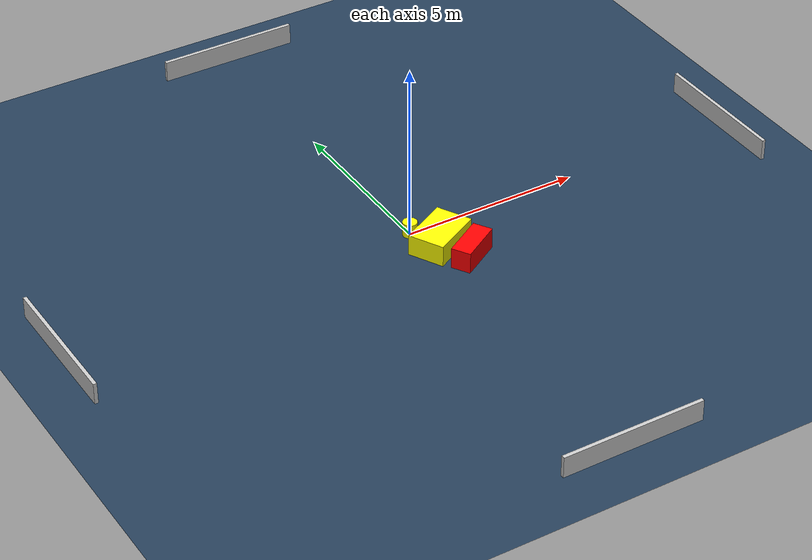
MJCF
<?xml version="1.0" ?>
<mujoco model="generated_environment">
  <option timestep="0.01" integrator="RK4" cone="elliptic"/>
  <default>
    <geom density="1"/>
  </default>
  <asset>
    <texture builtin="gradient" height="3072" name="skybox" rgb1="0.3 0.5 0.7" rgb2="0 0 0" type="skybox" width="512"/>
    <texture builtin="checker" height="300" name="groundplane" rgb1="0.2 0.3 0.4" rgb2="0.1 0.2 0.3" type="2d" width="300"/>
    <material name="groundplane" reflectance="0.2" texrepeat="5 5" texture="groundplane"/>
  </asset>
  <worldbody>
    <light dir="0 0 -1" directional="true" pos="0 0 1.5"/>
    <geom condim="3" friction="0.5 0.005 0.001" material="groundplane" name="floor" pos="0 0 0" size="0 0 0.05" type="plane"/>
    <body name="walls">
      <geom name="wall_1" condim="4" pos="-10.0 0.0 0.3" rgba="0.800000011920929 0.800000011920929 0.800000011920929 1.0" size="0.05 2.0 0.3" type="box"/>
      <geom name="wall_2" condim="4" pos="10.0 0.0 0.3" rgba="0.800000011920929 0.800000011920929 0.800000011920929 1.0" size="0.05 2.0 0.3" type="box"/>
      <geom name="wall_3" condim="4" pos="0.0 -10.0 0.3" rgba="0.800000011920929 0.800000011920929 0.800000011920929 1.0" size="2.0 0.05 0.3" type="box"/>
      <geom name="wall_4" condim="4" pos="0.0 10.0 0.3" rgba="0.800000011920929 0.800000011920929 0.800000011920929 1.0" size="2.0 0.05 0.3" type="box"/>
    </body>
    <body name="robot">
      <joint name="joint_x" type="slide" pos="0 0 0" axis="1 0 0"/>
      <joint name="joint_y" type="slide" pos="0 0 0" axis="0 1 0"/>
      <geom name="robot" type="cylinder" pos="0.0 0.0 0.2" size="0.2 0.2 0.0" mass="5.0" friction="1.0 0.005 0.0001" condim="4" rgba="1.0 1.0 0.0 1.0"/>
    </body>
    <body name="obstacle_1_movable">
      <geom name="obstacle_1_movable" condim="4" pos="0.3956617939691986 -0.8472591672308558 0.3" euler="0 0 297.7909919910801" friction="0.0 0.005 0.001" rgba="1.0 1.0 0.0 1.0" size="0.5145923622603665 0.735440967655101 0.3" type="box" mass="0.1"/>
      <joint type="free"/>
    </body>
    <body name="obstacle_2_static">
      <geom name="obstacle_2_static" condim="4" pos="0.8227684092803307 -1.701156145935043 0.3" euler="0 0 301.12827533789437" friction="0.0 0.005 0.001" rgba="1.0 0.0 0.0 1.0" size="0.2735279343640664 0.6322111862642402 0.3" type="box"/>
    </body>
  </worldbody>
  <actuator>
    <motor name="actuator_x" joint="joint_x" gear="1" ctrlrange="-1 1"/>
    <motor name="actuator_y" joint="joint_y" gear="1" ctrlrange="-1 1"/>
  </actuator>
</mujoco>
